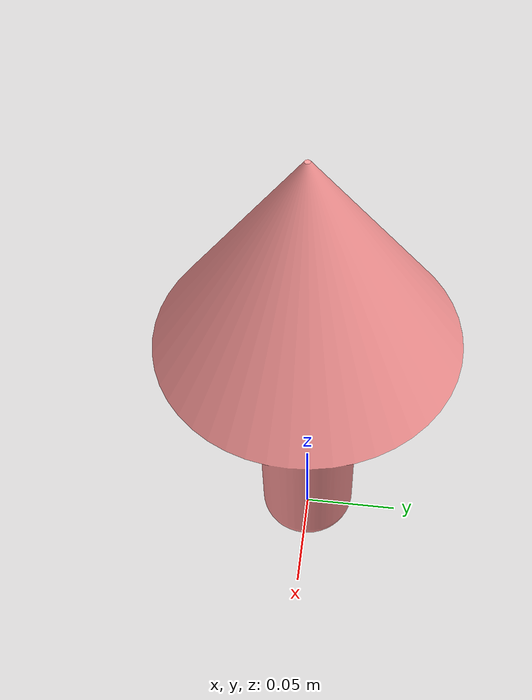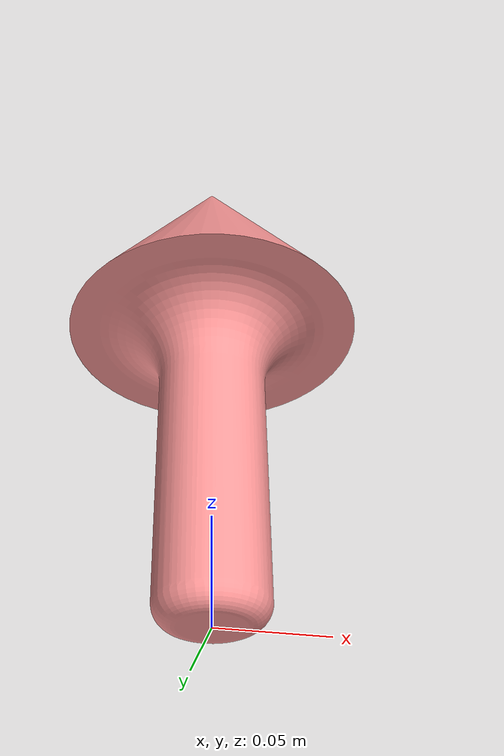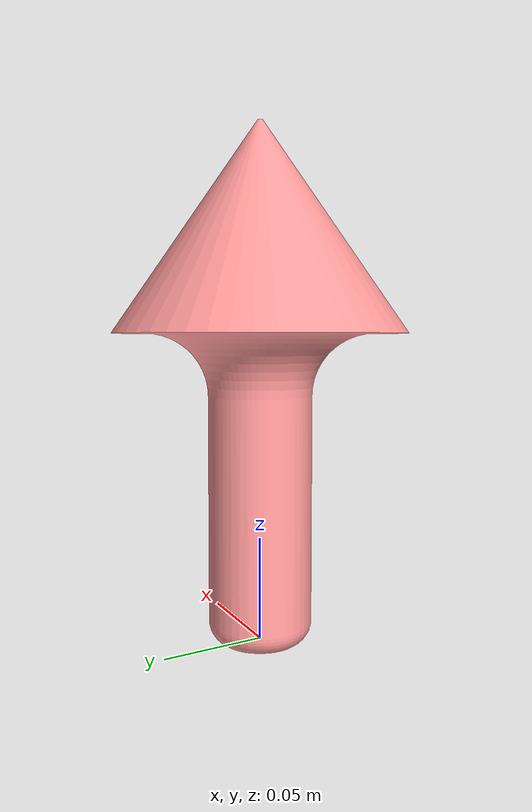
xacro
<?xml version="1.0"?>

<robot xmlns:xacro="http://www.ros.org/wiki/xacro" name="inertial_unit_st_disco">

  <link name="inertial_unit">
    <visual>
      <origin xyz="-0.07 0.07 0" rpy="1.57079632679 0 0" />
      <geometry>
        <mesh filename="package://microros_moveit2_demo/meshes/arrow.dae" scale="0.001 0.001 0.001"/>
      </geometry>
    </visual>
  </link>

</robot>
